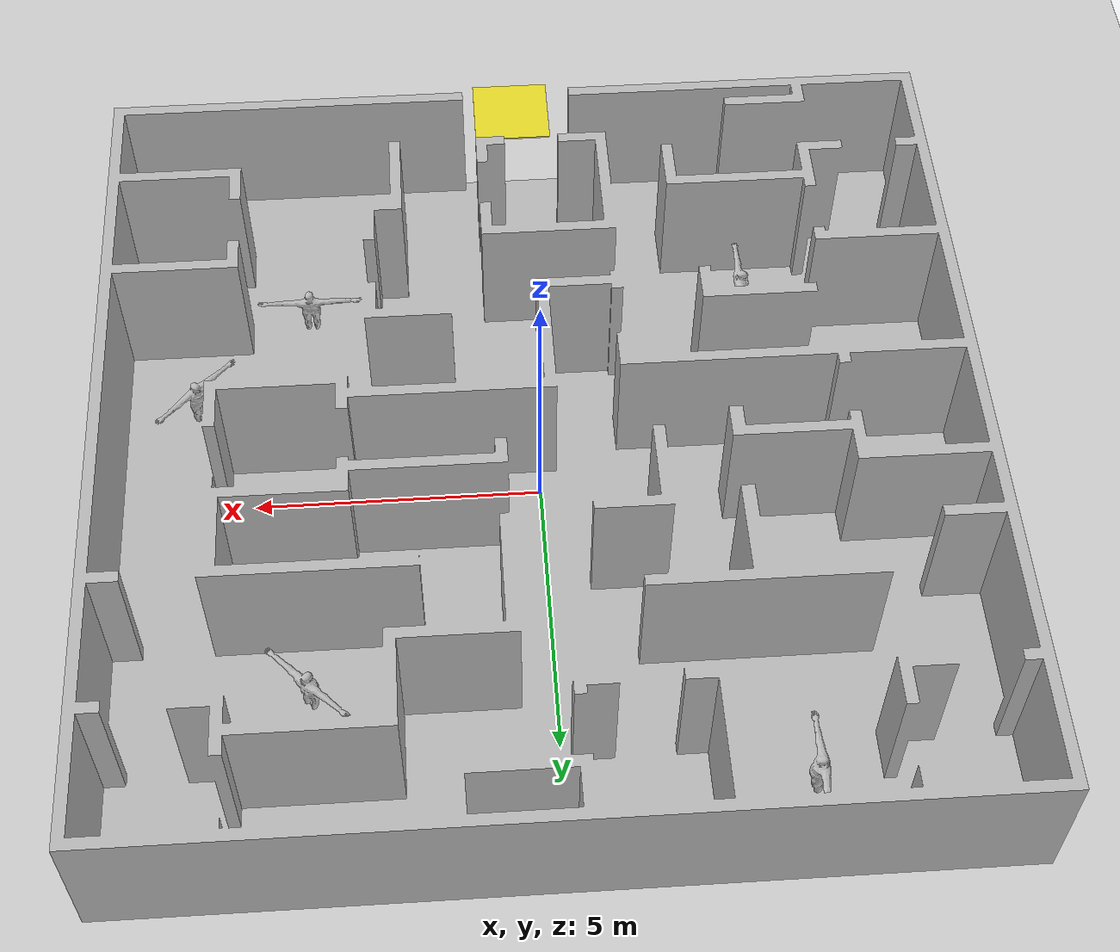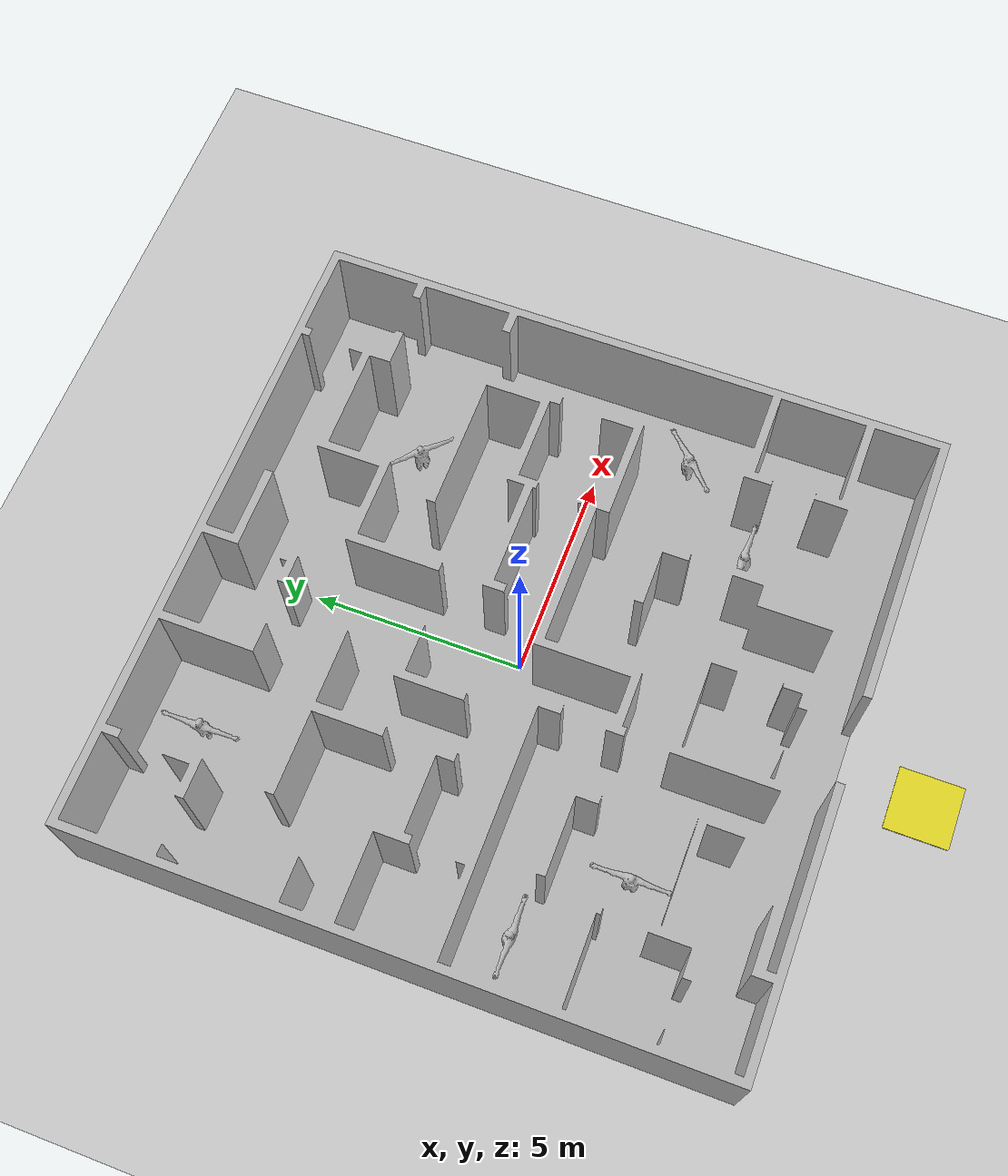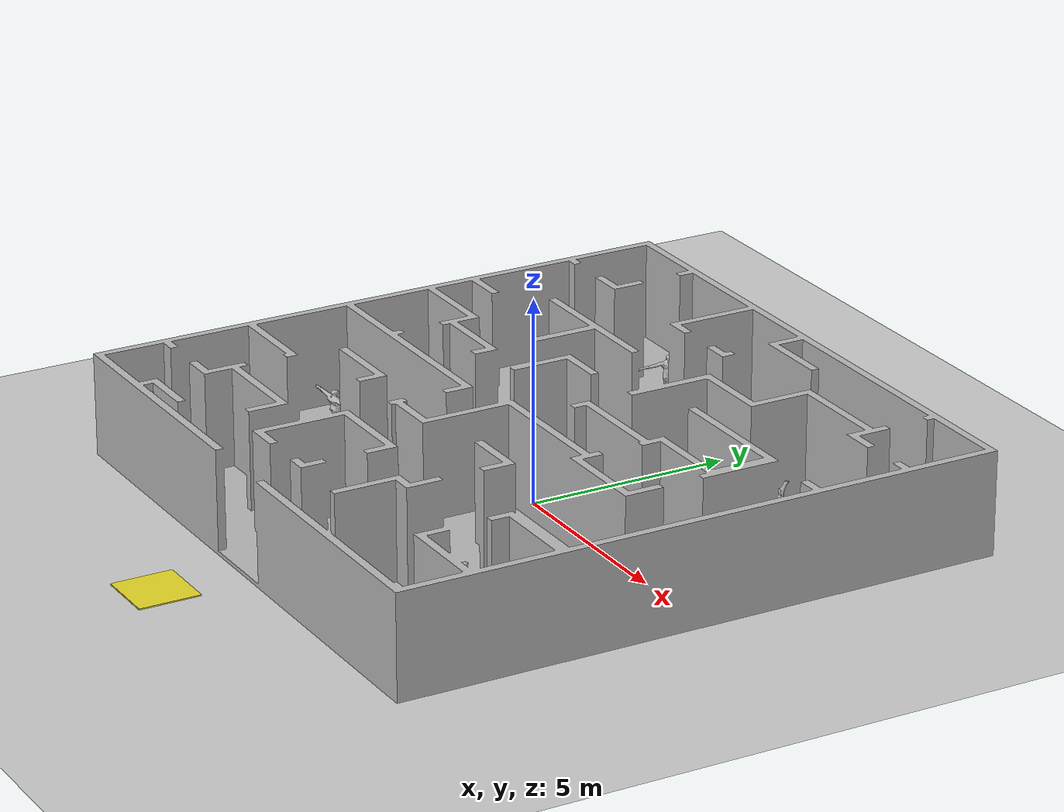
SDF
<?xml version="1.0" ?>
<sdf version="1.6">
  <world name="nidar_competition">

    <include>
      <uri>model://sun</uri>
    </include>

    <include>
      <uri>model://ground_plane</uri>
    </include>

    <include>
      <name>arina_nidar</name>
      <uri>model://arina_nidar</uri>
      <pose>0.0 0.0 0.0 0.0 0.0 0.0</pose>
    </include>

    <!-- The pad model self-centres (its own origin is the pad centre), so this pose is
         simply launch_pad.center from mission_config.yaml. -->
    <include>
      <name>launch_pad</name>
      <uri>model://launch_pad</uri>
      <pose>0.0 -9.5 0 0 0 0</pose>
    </include>

    <model name="survivor_1">
      <static>true</static>
      <pose>-4.0 -4.0 0 0 0 1.5708</pose>
      <link name="body">
        <visual name="visual">
          <pose>0 0 0.52 0 0 0</pose>
          <geometry>
            <mesh>
              <uri>file:///usr/share/gazebo-11/media/models/sitting.dae</uri>
              <scale>1 1 0.6</scale>
            </mesh>
          </geometry>
        </visual>
        <collision name="collision">
          <pose>0 0 0.25 0 0 0</pose>
          <geometry>
            <box>
              <size>0.3 0.3 0.5</size>
            </box>
          </geometry>
        </collision>
      </link>
    </model>
    <model name="survivor_2">
      <static>true</static>
      <pose>-6.0 -2.0 0 0 0 0.0</pose>
      <link name="body">
        <visual name="visual">
          <pose>0 0 0.52 0 0 0</pose>
          <geometry>
            <mesh>
              <uri>file:///usr/share/gazebo-11/media/models/sitting.dae</uri>
              <scale>1 1 0.6</scale>
            </mesh>
          </geometry>
        </visual>
        <collision name="collision">
          <pose>0 0 0.25 0 0 0</pose>
          <geometry>
            <box>
              <size>0.3 0.3 0.5</size>
            </box>
          </geometry>
        </collision>
      </link>
    </model>
    <model name="survivor_3">
      <static>true</static>
      <pose>4.0 -4.0 0 0 0 3.1416</pose>
      <link name="body">
        <visual name="visual">
          <pose>0 0 0.52 0 0 0</pose>
          <geometry>
            <mesh>
              <uri>file:///usr/share/gazebo-11/media/models/sitting.dae</uri>
              <scale>1 1 0.6</scale>
            </mesh>
          </geometry>
        </visual>
        <collision name="collision">
          <pose>0 0 0.25 0 0 0</pose>
          <geometry>
            <box>
              <size>0.3 0.3 0.5</size>
            </box>
          </geometry>
        </collision>
      </link>
    </model>
    <model name="survivor_4">
      <static>true</static>
      <pose>6.0 -2.0 0 0 0 0.7854</pose>
      <link name="body">
        <visual name="visual">
          <pose>0 0 0.52 0 0 0</pose>
          <geometry>
            <mesh>
              <uri>file:///usr/share/gazebo-11/media/models/sitting.dae</uri>
              <scale>1 1 0.6</scale>
            </mesh>
          </geometry>
        </visual>
        <collision name="collision">
          <pose>0 0 0.25 0 0 0</pose>
          <geometry>
            <box>
              <size>0.3 0.3 0.5</size>
            </box>
          </geometry>
        </collision>
      </link>
    </model>
    <model name="survivor_5">
      <static>true</static>
      <pose>-4.0 6.0 0 0 0 -1.5708</pose>
      <link name="body">
        <visual name="visual">
          <pose>0 0 0.52 0 0 0</pose>
          <geometry>
            <mesh>
              <uri>file:///usr/share/gazebo-11/media/models/sitting.dae</uri>
              <scale>1 1 0.6</scale>
            </mesh>
          </geometry>
        </visual>
        <collision name="collision">
          <pose>0 0 0.25 0 0 0</pose>
          <geometry>
            <box>
              <size>0.3 0.3 0.5</size>
            </box>
          </geometry>
        </collision>
      </link>
    </model>
    <model name="survivor_6">
      <static>true</static>
      <pose>4.0 4.0 0 0 0 2.3562</pose>
      <link name="body">
        <visual name="visual">
          <pose>0 0 0.52 0 0 0</pose>
          <geometry>
            <mesh>
              <uri>file:///usr/share/gazebo-11/media/models/sitting.dae</uri>
              <scale>1 1 0.6</scale>
            </mesh>
          </geometry>
        </visual>
        <collision name="collision">
          <pose>0 0 0.25 0 0 0</pose>
          <geometry>
            <box>
              <size>0.3 0.3 0.5</size>
            </box>
          </geometry>
        </collision>
      </link>
    </model>

    <physics name="default_physics" default="true" type="ode">
      <max_step_size>0.004</max_step_size>
      <real_time_factor>1.0</real_time_factor>
      <real_time_update_rate>250</real_time_update_rate>
    </physics>

  </world>
</sdf>

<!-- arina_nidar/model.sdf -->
<sdf version="1.5">
  <model name="arina_nidar">
    <static>true</static>
    <link name="link">
      <pose>-7.5 -7.5 0 0 0 0</pose>
      <collision name="collision">
        <geometry>
          <mesh>
            <uri>model://arina_nidar/meshes/arina_nidar.stl</uri>
            <scale>0.001 0.001 0.001</scale>
          </mesh>
        </geometry>
        <surface>
          <friction>
            <ode>
              <mu>1.0</mu>
              <mu2>1.0</mu2>
            </ode>
          </friction>
        </surface>
      </collision>
      <visual name="visual">
        <cast_shadows>false</cast_shadows>
        <geometry>
          <mesh>
            <uri>model://arina_nidar/meshes/arina_nidar.stl</uri>
            <scale>0.001 0.001 0.001</scale>
          </mesh>
        </geometry>
      </visual>
    </link>
  </model>
</sdf>

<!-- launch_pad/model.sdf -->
<sdf version="1.5">
  <model name="launch_pad">
    <static>true</static>
    <link name="link">
      <pose>-0.75 0.75 0 1.5707963 0 0</pose>
      <collision name="collision">
        <geometry>
          <mesh>
            <uri>model://launch_pad/meshes/launch_pad.stl</uri>
            <scale>0.00246 0.0002 0.00246</scale>
          </mesh>
        </geometry>
        <surface>
          <!-- Explicit ODE default, same reasoning as the arena: a high mu here would pin the
               vehicle on touchdown instead of letting it settle. -->
          <friction>
            <ode>
              <mu>1.0</mu>
              <mu2>1.0</mu2>
            </ode>
          </friction>
        </surface>
      </collision>
      <visual name="visual">
        <cast_shadows>false</cast_shadows>
        <geometry>
          <mesh>
            <uri>model://launch_pad/meshes/launch_pad.stl</uri>
            <scale>0.00246 0.0002 0.00246</scale>
          </mesh>
        </geometry>
        <material>
          <script>
            <name>Gazebo/Yellow</name>
            <uri>file://media/materials/scripts/gazebo.material</uri>
          </script>
        </material>
      </visual>
    </link>
  </model>
</sdf>
